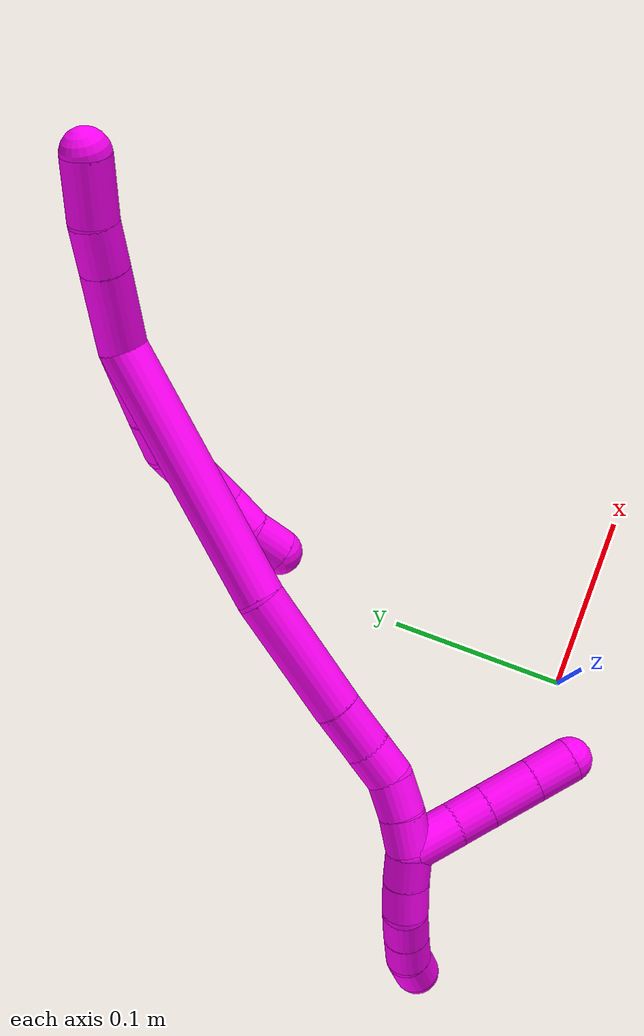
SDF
<sdf version="1.7">
 <world name="default">
  <model name="10">
   <static>0</static>
   <link name="10">
    <collision name="collision-cylinder-e_1_2_8">
     <pose>0.00047 -0.002849 -0.019972 2.99992 0.023297 0.325449</pose>
     <geometry><cylinder><radius>0.0125</radius><length>0.040359</length></cylinder></geometry>
     <surface>
      <friction><ode><mu>1.16</mu><mu2>1.16</mu2><slip1>0</slip1><slip2>0</slip2></ode></friction>
      <contact><ode><kp>1e+06</kp><kd>1</kd><max_vel>0</max_vel><min_depth>0.001</min_depth></ode></contact>
     </surface>
    </collision>
    <visual name="visual-cylinder-e_1_2_8">
     <pose>0.00047 -0.002849 -0.019972 2.99992 0.023297 0.325449</pose>
     <geometry><cylinder><radius>0.0125</radius><length>0.040359</length></cylinder></geometry>
     <material><ambient>1 0 0.964706 1</ambient></material>
    </visual>
    <collision name="collision-cylinder-e_2_8_9">
     <pose>0.001857 -0.007085 -0.051335 3.02038 0.079748 1.16316</pose>
     <geometry><cylinder><radius>0.0125</radius><length>0.023024</length></cylinder></geometry>
     <surface>
      <friction><ode><mu>1.16</mu><mu2>1.16</mu2><slip1>0</slip1><slip2>0</slip2></ode></friction>
      <contact><ode><kp>1e+06</kp><kd>1</kd><max_vel>0</max_vel><min_depth>0.001</min_depth></ode></contact>
     </surface>
    </collision>
    <visual name="visual-cylinder-e_2_8_9">
     <pose>0.001857 -0.007085 -0.051335 3.02038 0.079748 1.16316</pose>
     <geometry><cylinder><radius>0.0125</radius><length>0.023024</length></cylinder></geometry>
     <material><ambient>1 0 0.964706 1</ambient></material>
    </visual>
    <collision name="collision-cylinder-e_3_9_10">
     <pose>0.006036 -0.012656 -0.073291 2.76452 0.279558 1.27076</pose>
     <geometry><cylinder><radius>0.0125</radius><length>0.023643</length></cylinder></geometry>
     <surface>
      <friction><ode><mu>1.16</mu><mu2>1.16</mu2><slip1>0</slip1><slip2>0</slip2></ode></friction>
      <contact><ode><kp>1e+06</kp><kd>1</kd><max_vel>0</max_vel><min_depth>0.001</min_depth></ode></contact>
     </surface>
    </collision>
    <visual name="visual-cylinder-e_3_9_10">
     <pose>0.006036 -0.012656 -0.073291 2.76452 0.279558 1.27076</pose>
     <geometry><cylinder><radius>0.0125</radius><length>0.023643</length></cylinder></geometry>
     <material><ambient>1 0 0.964706 1</ambient></material>
    </visual>
    <collision name="collision-cylinder-e_4_10_11">
     <pose>0.010042 -0.023015 -0.093185 2.55691 0.066405 0.219831</pose>
     <geometry><cylinder><radius>0.0125</radius><length>0.022427</length></cylinder></geometry>
     <surface>
      <friction><ode><mu>1.16</mu><mu2>1.16</mu2><slip1>0</slip1><slip2>0</slip2></ode></friction>
      <contact><ode><kp>1e+06</kp><kd>1</kd><max_vel>0</max_vel><min_depth>0.001</min_depth></ode></contact>
     </surface>
    </collision>
    <visual name="visual-cylinder-e_4_10_11">
     <pose>0.010042 -0.023015 -0.093185 2.55691 0.066405 0.219831</pose>
     <geometry><cylinder><radius>0.0125</radius><length>0.022427</length></cylinder></geometry>
     <material><ambient>1 0 0.964706 1</ambient></material>
    </visual>
    <collision name="collision-cylinder-e_5_11_12">
     <pose>0.009631 -0.035788 -0.110037 2.42153 -0.114956 -0.303368</pose>
     <geometry><cylinder><radius>0.0125</radius><length>0.020143</length></cylinder></geometry>
     <surface>
      <friction><ode><mu>1.16</mu><mu2>1.16</mu2><slip1>0</slip1><slip2>0</slip2></ode></friction>
      <contact><ode><kp>1e+06</kp><kd>1</kd><max_vel>0</max_vel><min_depth>0.001</min_depth></ode></contact>
     </surface>
    </collision>
    <visual name="visual-cylinder-e_5_11_12">
     <pose>0.009631 -0.035788 -0.110037 2.42153 -0.114956 -0.303368</pose>
     <geometry><cylinder><radius>0.0125</radius><length>0.020143</length></cylinder></geometry>
     <material><ambient>1 0 0.964706 1</ambient></material>
    </visual>
    <collision name="collision-cylinder-e_6_12_6">
     <pose>0.010601 -0.048707 -0.125279 2.45558 0.209822 0.57345</pose>
     <geometry><cylinder><radius>0.0125</radius><length>0.020404</length></cylinder></geometry>
     <surface>
      <friction><ode><mu>1.16</mu><mu2>1.16</mu2><slip1>0</slip1><slip2>0</slip2></ode></friction>
      <contact><ode><kp>1e+06</kp><kd>1</kd><max_vel>0</max_vel><min_depth>0.001</min_depth></ode></contact>
     </surface>
    </collision>
    <visual name="visual-cylinder-e_6_12_6">
     <pose>0.010601 -0.048707 -0.125279 2.45558 0.209822 0.57345</pose>
     <geometry><cylinder><radius>0.0125</radius><length>0.020404</length></cylinder></geometry>
     <material><ambient>1 0 0.964706 1</ambient></material>
    </visual>
    <collision name="collision-cylinder-e_1_2_13">
     <pose>0.000401 -0.000625 0.021948 0.028483 0.018241 0.00026</pose>
     <geometry><cylinder><radius>0.0125</radius><length>0.04392</length></cylinder></geometry>
     <surface>
      <friction><ode><mu>1.16</mu><mu2>1.16</mu2><slip1>0</slip1><slip2>0</slip2></ode></friction>
      <contact><ode><kp>1e+06</kp><kd>1</kd><max_vel>0</max_vel><min_depth>0.001</min_depth></ode></contact>
     </surface>
    </collision>
    <visual name="visual-cylinder-e_1_2_13">
     <pose>0.000401 -0.000625 0.021948 0.028483 0.018241 0.00026</pose>
     <geometry><cylinder><radius>0.0125</radius><length>0.04392</length></cylinder></geometry>
     <material><ambient>1 0 0.964706 1</ambient></material>
    </visual>
    <collision name="collision-cylinder-e_2_13_14">
     <pose>0.001152 -0.001399 0.05599 0.012257 0.029025 0.000178</pose>
     <geometry><cylinder><radius>0.0125</radius><length>0.024202</length></cylinder></geometry>
     <surface>
      <friction><ode><mu>1.16</mu><mu2>1.16</mu2><slip1>0</slip1><slip2>0</slip2></ode></friction>
      <contact><ode><kp>1e+06</kp><kd>1</kd><max_vel>0</max_vel><min_depth>0.001</min_depth></ode></contact>
     </surface>
    </collision>
    <visual name="visual-cylinder-e_2_13_14">
     <pose>0.001152 -0.001399 0.05599 0.012257 0.029025 0.000178</pose>
     <geometry><cylinder><radius>0.0125</radius><length>0.024202</length></cylinder></geometry>
     <material><ambient>1 0 0.964706 1</ambient></material>
    </visual>
    <collision name="collision-cylinder-e_3_14_5">
     <pose>0.003923 -0.002661 0.0838 0.070756 0.15236 0.005403</pose>
     <geometry><cylinder><radius>0.0125</radius><length>0.031878</length></cylinder></geometry>
     <surface>
      <friction><ode><mu>1.16</mu><mu2>1.16</mu2><slip1>0</slip1><slip2>0</slip2></ode></friction>
      <contact><ode><kp>1e+06</kp><kd>1</kd><max_vel>0</max_vel><min_depth>0.001</min_depth></ode></contact>
     </surface>
    </collision>
    <visual name="visual-cylinder-e_3_14_5">
     <pose>0.003923 -0.002661 0.0838 0.070756 0.15236 0.005403</pose>
     <geometry><cylinder><radius>0.0125</radius><length>0.031878</length></cylinder></geometry>
     <material><ambient>1 0 0.964706 1</ambient></material>
    </visual>
    <collision name="collision-cylinder-e_1_2_15">
     <pose>-0.024802 -0.036881 -0.054668 2.54809 -0.359732 -1.07294</pose>
     <geometry><cylinder><radius>0.0125</radius><length>0.14091</length></cylinder></geometry>
     <surface>
      <friction><ode><mu>1.16</mu><mu2>1.16</mu2><slip1>0</slip1><slip2>0</slip2></ode></friction>
      <contact><ode><kp>1e+06</kp><kd>1</kd><max_vel>0</max_vel><min_depth>0.001</min_depth></ode></contact>
     </surface>
    </collision>
    <visual name="visual-cylinder-e_1_2_15">
     <pose>-0.024802 -0.036881 -0.054668 2.54809 -0.359732 -1.07294</pose>
     <geometry><cylinder><radius>0.0125</radius><length>0.14091</length></cylinder></geometry>
     <material><ambient>1 0 0.964706 1</ambient></material>
    </visual>
    <collision name="collision-cylinder-e_2_15_16">
     <pose>-0.055449 -0.092085 -0.138491 2.58054 -0.168135 -0.569057</pose>
     <geometry><cylinder><radius>0.0125</radius><length>0.069855</length></cylinder></geometry>
     <surface>
      <friction><ode><mu>1.16</mu><mu2>1.16</mu2><slip1>0</slip1><slip2>0</slip2></ode></friction>
      <contact><ode><kp>1e+06</kp><kd>1</kd><max_vel>0</max_vel><min_depth>0.001</min_depth></ode></contact>
     </surface>
    </collision>
    <visual name="visual-cylinder-e_2_15_16">
     <pose>-0.055449 -0.092085 -0.138491 2.58054 -0.168135 -0.569057</pose>
     <geometry><cylinder><radius>0.0125</radius><length>0.069855</length></cylinder></geometry>
     <material><ambient>1 0 0.964706 1</ambient></material>
    </visual>
    <collision name="collision-cylinder-e_3_16_17">
     <pose>-0.062853 -0.117596 -0.179285 2.58819 -0.113527 -0.394979</pose>
     <geometry><cylinder><radius>0.0125</radius><length>0.027535</length></cylinder></geometry>
     <surface>
      <friction><ode><mu>1.16</mu><mu2>1.16</mu2><slip1>0</slip1><slip2>0</slip2></ode></friction>
      <contact><ode><kp>1e+06</kp><kd>1</kd><max_vel>0</max_vel><min_depth>0.001</min_depth></ode></contact>
     </surface>
    </collision>
    <visual name="visual-cylinder-e_3_16_17">
     <pose>-0.062853 -0.117596 -0.179285 2.58819 -0.113527 -0.394979</pose>
     <geometry><cylinder><radius>0.0125</radius><length>0.027535</length></cylinder></geometry>
     <material><ambient>1 0 0.964706 1</ambient></material>
    </visual>
    <collision name="collision-cylinder-e_4_17_18">
     <pose>-0.066133 -0.130505 -0.199017 2.52648 -0.171889 -0.529741</pose>
     <geometry><cylinder><radius>0.0125</radius><length>0.020119</length></cylinder></geometry>
     <surface>
      <friction><ode><mu>1.16</mu><mu2>1.16</mu2><slip1>0</slip1><slip2>0</slip2></ode></friction>
      <contact><ode><kp>1e+06</kp><kd>1</kd><max_vel>0</max_vel><min_depth>0.001</min_depth></ode></contact>
     </surface>
    </collision>
    <visual name="visual-cylinder-e_4_17_18">
     <pose>-0.066133 -0.130505 -0.199017 2.52648 -0.171889 -0.529741</pose>
     <geometry><cylinder><radius>0.0125</radius><length>0.020119</length></cylinder></geometry>
     <material><ambient>1 0 0.964706 1</ambient></material>
    </visual>
    <collision name="collision-cylinder-e_5_18_19">
     <pose>-0.071861 -0.139801 -0.216147 2.7647 -0.391095 -1.6087</pose>
     <geometry><cylinder><radius>0.0125</radius><length>0.021022</length></cylinder></geometry>
     <surface>
      <friction><ode><mu>1.16</mu><mu2>1.16</mu2><slip1>0</slip1><slip2>0</slip2></ode></friction>
      <contact><ode><kp>1e+06</kp><kd>1</kd><max_vel>0</max_vel><min_depth>0.001</min_depth></ode></contact>
     </surface>
    </collision>
    <visual name="visual-cylinder-e_5_18_19">
     <pose>-0.071861 -0.139801 -0.216147 2.7647 -0.391095 -1.6087</pose>
     <geometry><cylinder><radius>0.0125</radius><length>0.021022</length></cylinder></geometry>
     <material><ambient>1 0 0.964706 1</ambient></material>
    </visual>
    <collision name="collision-cylinder-e_6_19_1">
     <pose>-0.079882 -0.145656 -0.234366 2.89838 -0.401199 -2.05924</pose>
     <geometry><cylinder><radius>0.0125</radius><length>0.020558</length></cylinder></geometry>
     <surface>
      <friction><ode><mu>1.16</mu><mu2>1.16</mu2><slip1>0</slip1><slip2>0</slip2></ode></friction>
      <contact><ode><kp>1e+06</kp><kd>1</kd><max_vel>0</max_vel><min_depth>0.001</min_depth></ode></contact>
     </surface>
    </collision>
    <visual name="visual-cylinder-e_6_19_1">
     <pose>-0.079882 -0.145656 -0.234366 2.89838 -0.401199 -2.05924</pose>
     <geometry><cylinder><radius>0.0125</radius><length>0.020558</length></cylinder></geometry>
     <material><ambient>1 0 0.964706 1</ambient></material>
    </visual>
    <collision name="collision-cylinder-e_1_1_20">
     <pose>-0.073367 -0.156876 -0.24334 1.54721 0.866616 0.848777</pose>
     <geometry><cylinder><radius>0.0125</radius><length>0.027629</length></cylinder></geometry>
     <surface>
      <friction><ode><mu>1.16</mu><mu2>1.16</mu2><slip1>0</slip1><slip2>0</slip2></ode></friction>
      <contact><ode><kp>1e+06</kp><kd>1</kd><max_vel>0</max_vel><min_depth>0.001</min_depth></ode></contact>
     </surface>
    </collision>
    <visual name="visual-cylinder-e_1_1_20">
     <pose>-0.073367 -0.156876 -0.24334 1.54721 0.866616 0.848777</pose>
     <geometry><cylinder><radius>0.0125</radius><length>0.027629</length></cylinder></geometry>
     <material><ambient>1 0 0.964706 1</ambient></material>
    </visual>
    <collision name="collision-cylinder-e_2_20_21">
     <pose>-0.055712 -0.172759 -0.242023 1.4128 0.792325 0.685636</pose>
     <geometry><cylinder><radius>0.0125</radius><length>0.020021</length></cylinder></geometry>
     <surface>
      <friction><ode><mu>1.16</mu><mu2>1.16</mu2><slip1>0</slip1><slip2>0</slip2></ode></friction>
      <contact><ode><kp>1e+06</kp><kd>1</kd><max_vel>0</max_vel><min_depth>0.001</min_depth></ode></contact>
     </surface>
    </collision>
    <visual name="visual-cylinder-e_2_20_21">
     <pose>-0.055712 -0.172759 -0.242023 1.4128 0.792325 0.685636</pose>
     <geometry><cylinder><radius>0.0125</radius><length>0.020021</length></cylinder></geometry>
     <material><ambient>1 0 0.964706 1</ambient></material>
    </visual>
    <collision name="collision-cylinder-e_3_21_22">
     <pose>-0.038393 -0.189793 -0.23924 1.4061 0.783433 0.673484</pose>
     <geometry><cylinder><radius>0.0125</radius><length>0.028882</length></cylinder></geometry>
     <surface>
      <friction><ode><mu>1.16</mu><mu2>1.16</mu2><slip1>0</slip1><slip2>0</slip2></ode></friction>
      <contact><ode><kp>1e+06</kp><kd>1</kd><max_vel>0</max_vel><min_depth>0.001</min_depth></ode></contact>
     </surface>
    </collision>
    <visual name="visual-cylinder-e_3_21_22">
     <pose>-0.038393 -0.189793 -0.23924 1.4061 0.783433 0.673484</pose>
     <geometry><cylinder><radius>0.0125</radius><length>0.028882</length></cylinder></geometry>
     <material><ambient>1 0 0.964706 1</ambient></material>
    </visual>
    <collision name="collision-cylinder-e_4_22_4">
     <pose>-0.019944 -0.2081 -0.236136 1.39893 0.780616 0.666489</pose>
     <geometry><cylinder><radius>0.0125</radius><length>0.023468</length></cylinder></geometry>
     <surface>
      <friction><ode><mu>1.16</mu><mu2>1.16</mu2><slip1>0</slip1><slip2>0</slip2></ode></friction>
      <contact><ode><kp>1e+06</kp><kd>1</kd><max_vel>0</max_vel><min_depth>0.001</min_depth></ode></contact>
     </surface>
    </collision>
    <visual name="visual-cylinder-e_4_22_4">
     <pose>-0.019944 -0.2081 -0.236136 1.39893 0.780616 0.666489</pose>
     <geometry><cylinder><radius>0.0125</radius><length>0.023468</length></cylinder></geometry>
     <material><ambient>1 0 0.964706 1</ambient></material>
    </visual>
    <collision name="collision-cylinder-e_1_1_23">
     <pose>-0.087052 -0.146924 -0.252986 -3.03491 -0.32112 2.50469</pose>
     <geometry><cylinder><radius>0.0125</radius><length>0.02</length></cylinder></geometry>
     <surface>
      <friction><ode><mu>1.16</mu><mu2>1.16</mu2><slip1>0</slip1><slip2>0</slip2></ode></friction>
      <contact><ode><kp>1e+06</kp><kd>1</kd><max_vel>0</max_vel><min_depth>0.001</min_depth></ode></contact>
     </surface>
    </collision>
    <visual name="visual-cylinder-e_1_1_23">
     <pose>-0.087052 -0.146924 -0.252986 -3.03491 -0.32112 2.50469</pose>
     <geometry><cylinder><radius>0.0125</radius><length>0.02</length></cylinder></geometry>
     <material><ambient>1 0 0.964706 1</ambient></material>
    </visual>
    <collision name="collision-cylinder-e_2_23_24">
     <pose>-0.09323 -0.145556 -0.271946 -3.10404 -0.306987 2.90001</pose>
     <geometry><cylinder><radius>0.0125</radius><length>0.02</length></cylinder></geometry>
     <surface>
      <friction><ode><mu>1.16</mu><mu2>1.16</mu2><slip1>0</slip1><slip2>0</slip2></ode></friction>
      <contact><ode><kp>1e+06</kp><kd>1</kd><max_vel>0</max_vel><min_depth>0.001</min_depth></ode></contact>
     </surface>
    </collision>
    <visual name="visual-cylinder-e_2_23_24">
     <pose>-0.09323 -0.145556 -0.271946 -3.10404 -0.306987 2.90001</pose>
     <geometry><cylinder><radius>0.0125</radius><length>0.02</length></cylinder></geometry>
     <material><ambient>1 0 0.964706 1</ambient></material>
    </visual>
    <collision name="collision-cylinder-e_3_24_25">
     <pose>-0.096667 -0.144428 -0.291434 -3.06439 -0.041471 0.985526</pose>
     <geometry><cylinder><radius>0.0125</radius><length>0.02</length></cylinder></geometry>
     <surface>
      <friction><ode><mu>1.16</mu><mu2>1.16</mu2><slip1>0</slip1><slip2>0</slip2></ode></friction>
      <contact><ode><kp>1e+06</kp><kd>1</kd><max_vel>0</max_vel><min_depth>0.001</min_depth></ode></contact>
     </surface>
    </collision>
    <visual name="visual-cylinder-e_3_24_25">
     <pose>-0.096667 -0.144428 -0.291434 -3.06439 -0.041471 0.985526</pose>
     <geometry><cylinder><radius>0.0125</radius><length>0.02</length></cylinder></geometry>
     <material><ambient>1 0 0.964706 1</ambient></material>
    </visual>
    <collision name="collision-cylinder-e_4_25_26">
     <pose>-0.097088 -0.143053 -0.311377 -3.08112 -0.00065 0.021487</pose>
     <geometry><cylinder><radius>0.0125</radius><length>0.02</length></cylinder></geometry>
     <surface>
      <friction><ode><mu>1.16</mu><mu2>1.16</mu2><slip1>0</slip1><slip2>0</slip2></ode></friction>
      <contact><ode><kp>1e+06</kp><kd>1</kd><max_vel>0</max_vel><min_depth>0.001</min_depth></ode></contact>
     </surface>
    </collision>
    <visual name="visual-cylinder-e_4_25_26">
     <pose>-0.097088 -0.143053 -0.311377 -3.08112 -0.00065 0.021487</pose>
     <geometry><cylinder><radius>0.0125</radius><length>0.02</length></cylinder></geometry>
     <material><ambient>1 0 0.964706 1</ambient></material>
    </visual>
    <collision name="collision-cylinder-e_5_26_3">
     <pose>-0.094815 -0.14302 -0.331079 3.08279 0.229946 2.64285</pose>
     <geometry><cylinder><radius>0.0125</radius><length>0.02</length></cylinder></geometry>
     <surface>
      <friction><ode><mu>1.16</mu><mu2>1.16</mu2><slip1>0</slip1><slip2>0</slip2></ode></friction>
      <contact><ode><kp>1e+06</kp><kd>1</kd><max_vel>0</max_vel><min_depth>0.001</min_depth></ode></contact>
     </surface>
    </collision>
    <visual name="visual-cylinder-e_5_26_3">
     <pose>-0.094815 -0.14302 -0.331079 3.08279 0.229946 2.64285</pose>
     <geometry><cylinder><radius>0.0125</radius><length>0.02</length></cylinder></geometry>
     <material><ambient>1 0 0.964706 1</ambient></material>
    </visual>
    <collision name="collision-sphere-3">
     <pose>-0.092536 -0.143593 -0.340799 0 -0 0</pose>
     <geometry><sphere><radius>0.0125</radius></sphere></geometry>
     <surface>
      <friction><ode><mu>1.16</mu><mu2>1.16</mu2><slip1>0</slip1><slip2>0</slip2></ode></friction>
      <contact><ode><kp>1e+06</kp><kd>1</kd><max_vel>0</max_vel><min_depth>0.001</min_depth></ode></contact>
     </surface>
    </collision>
    <visual name="visual-sphere-3">
     <pose>-0.092536 -0.143593 -0.340799 0 -0 0</pose>
     <geometry><sphere><radius>0.0125</radius></sphere></geometry>
     <material><ambient>1 0 0.964706 1</ambient></material>
    </visual>
    <collision name="collision-sphere-26">
     <pose>-0.097095 -0.142448 -0.321359 0 -0 0</pose>
     <geometry><sphere><radius>0.0125</radius></sphere></geometry>
     <surface>
      <friction><ode><mu>1.16</mu><mu2>1.16</mu2><slip1>0</slip1><slip2>0</slip2></ode></friction>
      <contact><ode><kp>1e+06</kp><kd>1</kd><max_vel>0</max_vel><min_depth>0.001</min_depth></ode></contact>
     </surface>
    </collision>
    <visual name="visual-sphere-26">
     <pose>-0.097095 -0.142448 -0.321359 0 -0 0</pose>
     <geometry><sphere><radius>0.0125</radius></sphere></geometry>
     <material><ambient>1 0 0.964706 1</ambient></material>
    </visual>
    <collision name="collision-sphere-25">
     <pose>-0.097082 -0.143657 -0.301395 0 -0 0</pose>
     <geometry><sphere><radius>0.0125</radius></sphere></geometry>
     <surface>
      <friction><ode><mu>1.16</mu><mu2>1.16</mu2><slip1>0</slip1><slip2>0</slip2></ode></friction>
      <contact><ode><kp>1e+06</kp><kd>1</kd><max_vel>0</max_vel><min_depth>0.001</min_depth></ode></contact>
     </surface>
    </collision>
    <visual name="visual-sphere-25">
     <pose>-0.097082 -0.143657 -0.301395 0 -0 0</pose>
     <geometry><sphere><radius>0.0125</radius></sphere></geometry>
     <material><ambient>1 0 0.964706 1</ambient></material>
    </visual>
    <collision name="collision-sphere-24">
     <pose>-0.096252 -0.145198 -0.281472 0 -0 0</pose>
     <geometry><sphere><radius>0.0125</radius></sphere></geometry>
     <surface>
      <friction><ode><mu>1.16</mu><mu2>1.16</mu2><slip1>0</slip1><slip2>0</slip2></ode></friction>
      <contact><ode><kp>1e+06</kp><kd>1</kd><max_vel>0</max_vel><min_depth>0.001</min_depth></ode></contact>
     </surface>
    </collision>
    <visual name="visual-sphere-24">
     <pose>-0.096252 -0.145198 -0.281472 0 -0 0</pose>
     <geometry><sphere><radius>0.0125</radius></sphere></geometry>
     <material><ambient>1 0 0.964706 1</ambient></material>
    </visual>
    <collision name="collision-sphere-23">
     <pose>-0.090209 -0.145914 -0.262421 0 -0 0</pose>
     <geometry><sphere><radius>0.0125</radius></sphere></geometry>
     <surface>
      <friction><ode><mu>1.16</mu><mu2>1.16</mu2><slip1>0</slip1><slip2>0</slip2></ode></friction>
      <contact><ode><kp>1e+06</kp><kd>1</kd><max_vel>0</max_vel><min_depth>0.001</min_depth></ode></contact>
     </surface>
    </collision>
    <visual name="visual-sphere-23">
     <pose>-0.090209 -0.145914 -0.262421 0 -0 0</pose>
     <geometry><sphere><radius>0.0125</radius></sphere></geometry>
     <material><ambient>1 0 0.964706 1</ambient></material>
    </visual>
    <collision name="collision-sphere-4">
     <pose>-0.011687 -0.216314 -0.23471 0 -0 0</pose>
     <geometry><sphere><radius>0.0125</radius></sphere></geometry>
     <surface>
      <friction><ode><mu>1.16</mu><mu2>1.16</mu2><slip1>0</slip1><slip2>0</slip2></ode></friction>
      <contact><ode><kp>1e+06</kp><kd>1</kd><max_vel>0</max_vel><min_depth>0.001</min_depth></ode></contact>
     </surface>
    </collision>
    <visual name="visual-sphere-4">
     <pose>-0.011687 -0.216314 -0.23471 0 -0 0</pose>
     <geometry><sphere><radius>0.0125</radius></sphere></geometry>
     <material><ambient>1 0 0.964706 1</ambient></material>
    </visual>
    <collision name="collision-sphere-22">
     <pose>-0.028202 -0.199886 -0.237562 0 -0 0</pose>
     <geometry><sphere><radius>0.0125</radius></sphere></geometry>
     <surface>
      <friction><ode><mu>1.16</mu><mu2>1.16</mu2><slip1>0</slip1><slip2>0</slip2></ode></friction>
      <contact><ode><kp>1e+06</kp><kd>1</kd><max_vel>0</max_vel><min_depth>0.001</min_depth></ode></contact>
     </surface>
    </collision>
    <visual name="visual-sphere-22">
     <pose>-0.028202 -0.199886 -0.237562 0 -0 0</pose>
     <geometry><sphere><radius>0.0125</radius></sphere></geometry>
     <material><ambient>1 0 0.964706 1</ambient></material>
    </visual>
    <collision name="collision-sphere-21">
     <pose>-0.048585 -0.1797 -0.240917 0 -0 0</pose>
     <geometry><sphere><radius>0.0125</radius></sphere></geometry>
     <surface>
      <friction><ode><mu>1.16</mu><mu2>1.16</mu2><slip1>0</slip1><slip2>0</slip2></ode></friction>
      <contact><ode><kp>1e+06</kp><kd>1</kd><max_vel>0</max_vel><min_depth>0.001</min_depth></ode></contact>
     </surface>
    </collision>
    <visual name="visual-sphere-21">
     <pose>-0.048585 -0.1797 -0.240917 0 -0 0</pose>
     <geometry><sphere><radius>0.0125</radius></sphere></geometry>
     <material><ambient>1 0 0.964706 1</ambient></material>
    </visual>
    <collision name="collision-sphere-20">
     <pose>-0.062839 -0.165817 -0.243129 0 -0 0</pose>
     <geometry><sphere><radius>0.0125</radius></sphere></geometry>
     <surface>
      <friction><ode><mu>1.16</mu><mu2>1.16</mu2><slip1>0</slip1><slip2>0</slip2></ode></friction>
      <contact><ode><kp>1e+06</kp><kd>1</kd><max_vel>0</max_vel><min_depth>0.001</min_depth></ode></contact>
     </surface>
    </collision>
    <visual name="visual-sphere-20">
     <pose>-0.062839 -0.165817 -0.243129 0 -0 0</pose>
     <geometry><sphere><radius>0.0125</radius></sphere></geometry>
     <material><ambient>1 0 0.964706 1</ambient></material>
    </visual>
    <collision name="collision-sphere-12">
     <pose>0.008476 -0.042386 -0.117558 0 -0 0</pose>
     <geometry><sphere><radius>0.0125</radius></sphere></geometry>
     <surface>
      <friction><ode><mu>1.16</mu><mu2>1.16</mu2><slip1>0</slip1><slip2>0</slip2></ode></friction>
      <contact><ode><kp>1e+06</kp><kd>1</kd><max_vel>0</max_vel><min_depth>0.001</min_depth></ode></contact>
     </surface>
    </collision>
    <visual name="visual-sphere-12">
     <pose>0.008476 -0.042386 -0.117558 0 -0 0</pose>
     <geometry><sphere><radius>0.0125</radius></sphere></geometry>
     <material><ambient>1 0 0.964706 1</ambient></material>
    </visual>
    <collision name="collision-sphere-11">
     <pose>0.010786 -0.029191 -0.102515 0 -0 0</pose>
     <geometry><sphere><radius>0.0125</radius></sphere></geometry>
     <surface>
      <friction><ode><mu>1.16</mu><mu2>1.16</mu2><slip1>0</slip1><slip2>0</slip2></ode></friction>
      <contact><ode><kp>1e+06</kp><kd>1</kd><max_vel>0</max_vel><min_depth>0.001</min_depth></ode></contact>
     </surface>
    </collision>
    <visual name="visual-sphere-11">
     <pose>0.010786 -0.029191 -0.102515 0 -0 0</pose>
     <geometry><sphere><radius>0.0125</radius></sphere></geometry>
     <material><ambient>1 0 0.964706 1</ambient></material>
    </visual>
    <collision name="collision-sphere-10">
     <pose>0.009298 -0.01684 -0.083855 0 -0 0</pose>
     <geometry><sphere><radius>0.0125</radius></sphere></geometry>
     <surface>
      <friction><ode><mu>1.16</mu><mu2>1.16</mu2><slip1>0</slip1><slip2>0</slip2></ode></friction>
      <contact><ode><kp>1e+06</kp><kd>1</kd><max_vel>0</max_vel><min_depth>0.001</min_depth></ode></contact>
     </surface>
    </collision>
    <visual name="visual-sphere-10">
     <pose>0.009298 -0.01684 -0.083855 0 -0 0</pose>
     <geometry><sphere><radius>0.0125</radius></sphere></geometry>
     <material><ambient>1 0 0.964706 1</ambient></material>
    </visual>
    <collision name="collision-sphere-9">
     <pose>0.002774 -0.008472 -0.062726 0 -0 0</pose>
     <geometry><sphere><radius>0.0125</radius></sphere></geometry>
     <surface>
      <friction><ode><mu>1.16</mu><mu2>1.16</mu2><slip1>0</slip1><slip2>0</slip2></ode></friction>
      <contact><ode><kp>1e+06</kp><kd>1</kd><max_vel>0</max_vel><min_depth>0.001</min_depth></ode></contact>
     </surface>
    </collision>
    <visual name="visual-sphere-9">
     <pose>0.002774 -0.008472 -0.062726 0 -0 0</pose>
     <geometry><sphere><radius>0.0125</radius></sphere></geometry>
     <material><ambient>1 0 0.964706 1</ambient></material>
    </visual>
    <collision name="collision-sphere-2">
     <geometry><sphere><radius>0.0125</radius></sphere></geometry>
     <surface>
      <friction><ode><mu>1.16</mu><mu2>1.16</mu2><slip1>0</slip1><slip2>0</slip2></ode></friction>
      <contact><ode><kp>1e+06</kp><kd>1</kd><max_vel>0</max_vel><min_depth>0.001</min_depth></ode></contact>
     </surface>
    </collision>
    <visual name="visual-sphere-2">
     <geometry><sphere><radius>0.0125</radius></sphere></geometry>
     <material><ambient>1 0 0.964706 1</ambient></material>
    </visual>
    <collision name="collision-sphere-19">
     <pose>-0.075868 -0.143377 -0.225182 0 -0 0</pose>
     <geometry><sphere><radius>0.0125</radius></sphere></geometry>
     <surface>
      <friction><ode><mu>1.16</mu><mu2>1.16</mu2><slip1>0</slip1><slip2>0</slip2></ode></friction>
      <contact><ode><kp>1e+06</kp><kd>1</kd><max_vel>0</max_vel><min_depth>0.001</min_depth></ode></contact>
     </surface>
    </collision>
    <visual name="visual-sphere-19">
     <pose>-0.075868 -0.143377 -0.225182 0 -0 0</pose>
     <geometry><sphere><radius>0.0125</radius></sphere></geometry>
     <material><ambient>1 0 0.964706 1</ambient></material>
    </visual>
    <collision name="collision-sphere-8">
     <pose>0.00094 -0.005697 -0.039944 0 -0 0</pose>
     <geometry><sphere><radius>0.0125</radius></sphere></geometry>
     <surface>
      <friction><ode><mu>1.16</mu><mu2>1.16</mu2><slip1>0</slip1><slip2>0</slip2></ode></friction>
      <contact><ode><kp>1e+06</kp><kd>1</kd><max_vel>0</max_vel><min_depth>0.001</min_depth></ode></contact>
     </surface>
    </collision>
    <visual name="visual-sphere-8">
     <pose>0.00094 -0.005697 -0.039944 0 -0 0</pose>
     <geometry><sphere><radius>0.0125</radius></sphere></geometry>
     <material><ambient>1 0 0.964706 1</ambient></material>
    </visual>
    <collision name="collision-sphere-6">
     <pose>0.012726 -0.055027 -0.133 0 -0 0</pose>
     <geometry><sphere><radius>0.0125</radius></sphere></geometry>
     <surface>
      <friction><ode><mu>1.16</mu><mu2>1.16</mu2><slip1>0</slip1><slip2>0</slip2></ode></friction>
      <contact><ode><kp>1e+06</kp><kd>1</kd><max_vel>0</max_vel><min_depth>0.001</min_depth></ode></contact>
     </surface>
    </collision>
    <visual name="visual-sphere-6">
     <pose>0.012726 -0.055027 -0.133 0 -0 0</pose>
     <geometry><sphere><radius>0.0125</radius></sphere></geometry>
     <material><ambient>1 0 0.964706 1</ambient></material>
    </visual>
    <collision name="collision-sphere-13">
     <pose>0.000801 -0.001251 0.043895 0 -0 0</pose>
     <geometry><sphere><radius>0.0125</radius></sphere></geometry>
     <surface>
      <friction><ode><mu>1.16</mu><mu2>1.16</mu2><slip1>0</slip1><slip2>0</slip2></ode></friction>
      <contact><ode><kp>1e+06</kp><kd>1</kd><max_vel>0</max_vel><min_depth>0.001</min_depth></ode></contact>
     </surface>
    </collision>
    <visual name="visual-sphere-13">
     <pose>0.000801 -0.001251 0.043895 0 -0 0</pose>
     <geometry><sphere><radius>0.0125</radius></sphere></geometry>
     <material><ambient>1 0 0.964706 1</ambient></material>
    </visual>
    <collision name="collision-sphere-14">
     <pose>0.001503 -0.001547 0.068085 0 -0 0</pose>
     <geometry><sphere><radius>0.0125</radius></sphere></geometry>
     <surface>
      <friction><ode><mu>1.16</mu><mu2>1.16</mu2><slip1>0</slip1><slip2>0</slip2></ode></friction>
      <contact><ode><kp>1e+06</kp><kd>1</kd><max_vel>0</max_vel><min_depth>0.001</min_depth></ode></contact>
     </surface>
    </collision>
    <visual name="visual-sphere-14">
     <pose>0.001503 -0.001547 0.068085 0 -0 0</pose>
     <geometry><sphere><radius>0.0125</radius></sphere></geometry>
     <material><ambient>1 0 0.964706 1</ambient></material>
    </visual>
    <collision name="collision-sphere-5">
     <pose>0.006342 -0.003775 0.099515 0 -0 0</pose>
     <geometry><sphere><radius>0.0125</radius></sphere></geometry>
     <surface>
      <friction><ode><mu>1.16</mu><mu2>1.16</mu2><slip1>0</slip1><slip2>0</slip2></ode></friction>
      <contact><ode><kp>1e+06</kp><kd>1</kd><max_vel>0</max_vel><min_depth>0.001</min_depth></ode></contact>
     </surface>
    </collision>
    <visual name="visual-sphere-5">
     <pose>0.006342 -0.003775 0.099515 0 -0 0</pose>
     <geometry><sphere><radius>0.0125</radius></sphere></geometry>
     <material><ambient>1 0 0.964706 1</ambient></material>
    </visual>
    <collision name="collision-sphere-15">
     <pose>-0.049604 -0.073762 -0.109335 0 -0 0</pose>
     <geometry><sphere><radius>0.0125</radius></sphere></geometry>
     <surface>
      <friction><ode><mu>1.16</mu><mu2>1.16</mu2><slip1>0</slip1><slip2>0</slip2></ode></friction>
      <contact><ode><kp>1e+06</kp><kd>1</kd><max_vel>0</max_vel><min_depth>0.001</min_depth></ode></contact>
     </surface>
    </collision>
    <visual name="visual-sphere-15">
     <pose>-0.049604 -0.073762 -0.109335 0 -0 0</pose>
     <geometry><sphere><radius>0.0125</radius></sphere></geometry>
     <material><ambient>1 0 0.964706 1</ambient></material>
    </visual>
    <collision name="collision-sphere-16">
     <pose>-0.061294 -0.110407 -0.167647 0 -0 0</pose>
     <geometry><sphere><radius>0.0125</radius></sphere></geometry>
     <surface>
      <friction><ode><mu>1.16</mu><mu2>1.16</mu2><slip1>0</slip1><slip2>0</slip2></ode></friction>
      <contact><ode><kp>1e+06</kp><kd>1</kd><max_vel>0</max_vel><min_depth>0.001</min_depth></ode></contact>
     </surface>
    </collision>
    <visual name="visual-sphere-16">
     <pose>-0.061294 -0.110407 -0.167647 0 -0 0</pose>
     <geometry><sphere><radius>0.0125</radius></sphere></geometry>
     <material><ambient>1 0 0.964706 1</ambient></material>
    </visual>
    <collision name="collision-sphere-17">
     <pose>-0.064413 -0.124786 -0.190922 0 -0 0</pose>
     <geometry><sphere><radius>0.0125</radius></sphere></geometry>
     <surface>
      <friction><ode><mu>1.16</mu><mu2>1.16</mu2><slip1>0</slip1><slip2>0</slip2></ode></friction>
      <contact><ode><kp>1e+06</kp><kd>1</kd><max_vel>0</max_vel><min_depth>0.001</min_depth></ode></contact>
     </surface>
    </collision>
    <visual name="visual-sphere-17">
     <pose>-0.064413 -0.124786 -0.190922 0 -0 0</pose>
     <geometry><sphere><radius>0.0125</radius></sphere></geometry>
     <material><ambient>1 0 0.964706 1</ambient></material>
    </visual>
    <collision name="collision-sphere-18">
     <pose>-0.067854 -0.136225 -0.207112 0 -0 0</pose>
     <geometry><sphere><radius>0.0125</radius></sphere></geometry>
     <surface>
      <friction><ode><mu>1.16</mu><mu2>1.16</mu2><slip1>0</slip1><slip2>0</slip2></ode></friction>
      <contact><ode><kp>1e+06</kp><kd>1</kd><max_vel>0</max_vel><min_depth>0.001</min_depth></ode></contact>
     </surface>
    </collision>
    <visual name="visual-sphere-18">
     <pose>-0.067854 -0.136225 -0.207112 0 -0 0</pose>
     <geometry><sphere><radius>0.0125</radius></sphere></geometry>
     <material><ambient>1 0 0.964706 1</ambient></material>
    </visual>
    <collision name="collision-sphere-1">
     <pose>-0.083896 -0.147935 -0.243551 0 -0 0</pose>
     <geometry><sphere><radius>0.0125</radius></sphere></geometry>
     <surface>
      <friction><ode><mu>1.16</mu><mu2>1.16</mu2><slip1>0</slip1><slip2>0</slip2></ode></friction>
      <contact><ode><kp>1e+06</kp><kd>1</kd><max_vel>0</max_vel><min_depth>0.001</min_depth></ode></contact>
     </surface>
    </collision>
    <visual name="visual-sphere-1">
     <pose>-0.083896 -0.147935 -0.243551 0 -0 0</pose>
     <geometry><sphere><radius>0.0125</radius></sphere></geometry>
     <material><ambient>1 0 0.964706 1</ambient></material>
    </visual>
    <inertial>
     <pose>-0.035558 -0.078665 -0.12596 0 -0 0</pose>
     <mass>0.75</mass>
     <inertia>
      <ixx>-3.7e-05</ixx>
      <ixy>0</ixy>
      <ixz>0</ixz>
      <iyy>-0.00029</iyy>
      <iyz>0</iyz>
      <izz>0.00021</izz>
     </inertia>
    </inertial>
   </link>
   <pose>0.063741 0.271092 0.166035 -0.404713 0.640356 -0.071629</pose>
  </model>
 </world>
</sdf>
